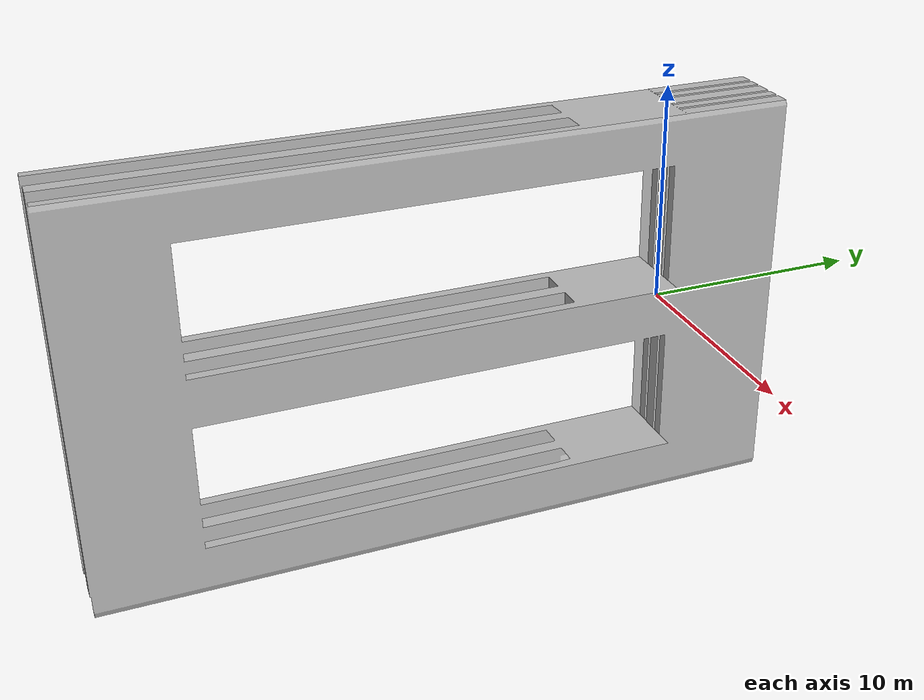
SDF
<?xml version="1.0" ?>
<sdf version="1.4">

	<model name="pallet480x2000x140mm">
		<static>true</static>
		<link name="link">
                        <pose>0 0 0.06 0 0 0</pose>
			<collision name="collision">
				<geometry>
					<mesh>
						<uri>model://pallet480x2000x140mm/mesh/pallet.dae</uri>
						<!-- original size = 1.016 x 0.090678 x 0.090678 m -->
						<!-- final size = 0.48 x 1 x 0.14 m -->
                                                <scale>0.472 22.028 1.5439</scale>
					</mesh>
				</geometry>

                        </collision>
			<visual name="visual">
				<geometry>
					<mesh>
						<uri>model://pallet480x2000x140mm/mesh/pallet.dae</uri>
						<!-- original size = 1.016 x 0.090678 x 0.090678 m -->
						<!-- final size = 0.48 x 1 x 0.14 m -->
                                                <scale>0.472 22.028 1.5439</scale>
					</mesh>
				</geometry>
			</visual>
		</link>
	</model>
</sdf>
